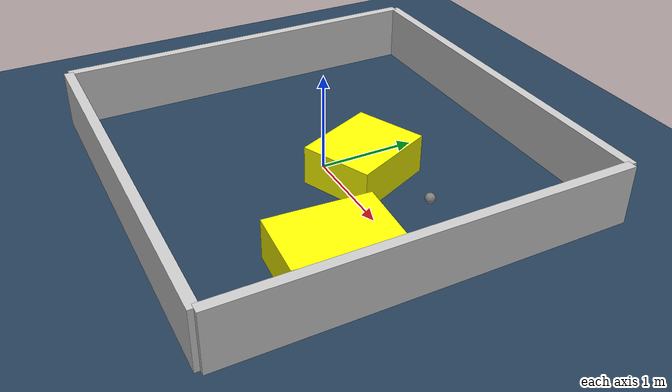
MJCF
<?xml version="1.0" ?>
<mujoco model="generated_environment">
  <option timestep="0.01" integrator="RK4" cone="elliptic"/>
  <default>
    <geom density="1"/>
  </default>
  <asset>
    <texture builtin="gradient" height="3072" rgb1="0.3 0.5 0.7" rgb2="0 0 0" type="skybox" width="512"/>
    <texture builtin="checker" height="300" mark="edge" markrgb="0.8 0.8 0.8" name="groundplane" rgb1="0.2 0.3 0.4" rgb2="0.1 0.2 0.3" type="2d" width="300"/>
    <material name="groundplane" reflectance="0.2" texrepeat="5 5" texture="groundplane" texuniform="true"/>
    <material name="robot" rgba="0.0 1.0 0.0 1"/>
  </asset>
  <worldbody>
    <light dir="0 0 -1" directional="true" pos="0 0 1.5"/>
    <geom condim="4" friction="1.0 0.005 0.001" material="groundplane" name="floor" size="0 0 0.05" type="plane"/>
    <body name="walls">
      <geom name="wall_1" condim="4" pos="-2.0 0.0 0.3" rgba="0.800000011920929 0.800000011920929 0.800000011920929 1.0" size="0.05 2.0 0.3" type="box"/>
      <geom name="wall_2" condim="4" pos="2.0 0.0 0.3" rgba="0.800000011920929 0.800000011920929 0.800000011920929 1.0" size="0.05 2.0 0.3" type="box"/>
      <geom name="wall_3" condim="4" pos="0.0 -2.0 0.3" rgba="0.800000011920929 0.800000011920929 0.800000011920929 1.0" size="2.0 0.05 0.3" type="box"/>
      <geom name="wall_4" condim="4" pos="0.0 2.0 0.3" rgba="0.800000011920929 0.800000011920929 0.800000011920929 1.0" size="2.0 0.05 0.3" type="box"/>
    </body>
    <body name="robot">
      <joint name="joint_x" type="slide" pos="0 0 0" axis="1 0 0"/>
      <joint name="joint_y" type="slide" pos="0 0 0" axis="0 1 0"/>
      <geom name="robot" type="sphere" pos="1.1723763279695016 0.4843747267937042 0.2" size="0.05" mass="5." friction="1.0 0.005 0.0001" condim="4"/>
      <site name="sensor_ball"/>
    </body>
    <body name="obstacle_1_movable">
      <geom name="obstacle_1_movable" condim="4" pos="0.3346603453646213 0.2640337820478298 0.2" euler="0 0 113.7115175847964" friction="1.0 0.005 0.001" rgba="1 1 0 1" size="0.4432328250572839 0.37053832274914855 0.2" type="box" mass="0.1"/>
      <joint type="free"/>
    </body>
    <body name="obstacle_2_movable">
      <geom name="obstacle_2_movable" condim="4" pos="1.413068505446678 -0.6160826821837775 0.2" euler="0 0 266.40120475418763" friction="1.0 0.005 0.001" rgba="1 1 0 1" size="0.5154260445578227 0.35068535028234016 0.2" type="box" mass="0.1"/>
      <joint type="free"/>
    </body>
  </worldbody>
  <actuator>
    <motor name="actuator_x" joint="joint_x" gear="1" ctrlrange="-1 1"/>
    <motor name="actuator_y" joint="joint_y" gear="1" ctrlrange="-1 1"/>
  </actuator>
</mujoco>
